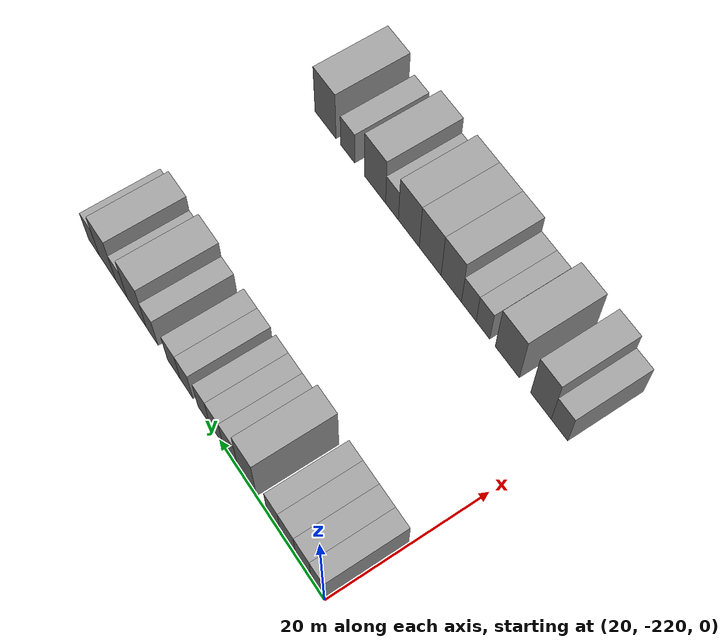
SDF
<sdf version="1.6">
 <world name="default">
  <model name="building_1">
   <static>1</static>
   <pose>25.0000 -218.7349 0 0.000000 0.000000 0.000000</pose>
   <link name="link">
    <pose>0 0 3.00 0 0 0</pose>
    <collision name="collision"><geometry><box><size>10.0000 2.5302 6.0000</size></box></geometry></collision>
    <visual name="visual">
     <cast_shadows>0</cast_shadows>
     <geometry><box><size>10.0000 2.5302 6.0000</size></box></geometry>
     <material>
      <script>
       <uri>model://grey_wall/materials/scripts</uri>
       <uri>model://grey_wall/materials/textures</uri>
       <name>vrc/grey_wall</name>
      </script>
     </material>
    </visual>
   </link>
  </model>
  <model name="building_2">
   <static>1</static>
   <pose>25.0000 -216.0574 0 0.000000 0.000000 0.000000</pose>
   <link name="link">
    <pose>0 0 3.00 0 0 0</pose>
    <collision name="collision"><geometry><box><size>10.0000 2.8248 6.0000</size></box></geometry></collision>
    <visual name="visual">
     <cast_shadows>0</cast_shadows>
     <geometry><box><size>10.0000 2.8248 6.0000</size></box></geometry>
     <material>
      <script>
       <uri>model://grey_wall/materials/scripts</uri>
       <uri>model://grey_wall/materials/textures</uri>
       <name>vrc/grey_wall</name>
      </script>
     </material>
    </visual>
   </link>
  </model>
  <model name="building_3">
   <static>1</static>
   <pose>25.0000 -213.1955 0 0.000000 0.000000 0.000000</pose>
   <link name="link">
    <pose>0 0 3.00 0 0 0</pose>
    <collision name="collision"><geometry><box><size>10.0000 2.8991 6.0000</size></box></geometry></collision>
    <visual name="visual">
     <cast_shadows>0</cast_shadows>
     <geometry><box><size>10.0000 2.8991 6.0000</size></box></geometry>
     <material>
      <script>
       <uri>model://grey_wall/materials/scripts</uri>
       <uri>model://grey_wall/materials/textures</uri>
       <name>vrc/grey_wall</name>
      </script>
     </material>
    </visual>
   </link>
  </model>
  <model name="building_4">
   <static>1</static>
   <pose>25.0000 -210.4919 0 0.000000 0.000000 0.000000</pose>
   <link name="link">
    <pose>0 0 3.00 0 0 0</pose>
    <collision name="collision"><geometry><box><size>10.0000 2.5081 6.0000</size></box></geometry></collision>
    <visual name="visual">
     <cast_shadows>0</cast_shadows>
     <geometry><box><size>10.0000 2.5081 6.0000</size></box></geometry>
     <material>
      <script>
       <uri>model://grey_wall/materials/scripts</uri>
       <uri>model://grey_wall/materials/textures</uri>
       <name>vrc/grey_wall</name>
      </script>
     </material>
    </visual>
   </link>
  </model>
  <model name="building_5">
   <static>1</static>
   <pose>25.0000 -205.4100 0 0.000000 0.000000 0.000000</pose>
   <link name="link">
    <pose>0 0 4.50 0 0 0</pose>
    <collision name="collision"><geometry><box><size>10.0000 3.6556 9.0000</size></box></geometry></collision>
    <visual name="visual">
     <cast_shadows>0</cast_shadows>
     <geometry><box><size>10.0000 3.6556 9.0000</size></box></geometry>
     <material>
      <script>
       <uri>model://grey_wall/materials/scripts</uri>
       <uri>model://grey_wall/materials/textures</uri>
       <name>vrc/grey_wall</name>
      </script>
     </material>
    </visual>
   </link>
  </model>
  <model name="building_6">
   <static>1</static>
   <pose>25.0000 -202.0952 0 0.000000 0.000000 0.000000</pose>
   <link name="link">
    <pose>0 0 3.00 0 0 0</pose>
    <collision name="collision"><geometry><box><size>10.0000 2.9741 6.0000</size></box></geometry></collision>
    <visual name="visual">
     <cast_shadows>0</cast_shadows>
     <geometry><box><size>10.0000 2.9741 6.0000</size></box></geometry>
     <material>
      <script>
       <uri>model://grey_wall/materials/scripts</uri>
       <uri>model://grey_wall/materials/textures</uri>
       <name>vrc/grey_wall</name>
      </script>
     </material>
    </visual>
   </link>
  </model>
  <model name="building_7">
   <static>1</static>
   <pose>25.0000 -199.2665 0 0.000000 0.000000 0.000000</pose>
   <link name="link">
    <pose>0 0 3.00 0 0 0</pose>
    <collision name="collision"><geometry><box><size>10.0000 2.6833 6.0000</size></box></geometry></collision>
    <visual name="visual">
     <cast_shadows>0</cast_shadows>
     <geometry><box><size>10.0000 2.6833 6.0000</size></box></geometry>
     <material>
      <script>
       <uri>model://grey_wall/materials/scripts</uri>
       <uri>model://grey_wall/materials/textures</uri>
       <name>vrc/grey_wall</name>
      </script>
     </material>
    </visual>
   </link>
  </model>
  <model name="building_8">
   <static>1</static>
   <pose>25.0000 -196.7200 0 0.000000 0.000000 0.000000</pose>
   <link name="link">
    <pose>0 0 3.00 0 0 0</pose>
    <collision name="collision"><geometry><box><size>10.0000 2.4096 6.0000</size></box></geometry></collision>
    <visual name="visual">
     <cast_shadows>0</cast_shadows>
     <geometry><box><size>10.0000 2.4096 6.0000</size></box></geometry>
     <material>
      <script>
       <uri>model://grey_wall/materials/scripts</uri>
       <uri>model://grey_wall/materials/textures</uri>
       <name>vrc/grey_wall</name>
      </script>
     </material>
    </visual>
   </link>
  </model>
  <model name="building_9">
   <static>1</static>
   <pose>25.0000 -193.1992 0 0.000000 0.000000 0.000000</pose>
   <link name="link">
    <pose>0 0 3.00 0 0 0</pose>
    <collision name="collision"><geometry><box><size>10.0000 2.6320 6.0000</size></box></geometry></collision>
    <visual name="visual">
     <cast_shadows>0</cast_shadows>
     <geometry><box><size>10.0000 2.6320 6.0000</size></box></geometry>
     <material>
      <script>
       <uri>model://grey_wall/materials/scripts</uri>
       <uri>model://grey_wall/materials/textures</uri>
       <name>vrc/grey_wall</name>
      </script>
     </material>
    </visual>
   </link>
  </model>
  <model name="building_10">
   <static>1</static>
   <pose>25.0000 -190.5442 0 0.000000 0.000000 0.000000</pose>
   <link name="link">
    <pose>0 0 3.00 0 0 0</pose>
    <collision name="collision"><geometry><box><size>10.0000 2.6780 6.0000</size></box></geometry></collision>
    <visual name="visual">
     <cast_shadows>0</cast_shadows>
     <geometry><box><size>10.0000 2.6780 6.0000</size></box></geometry>
     <material>
      <script>
       <uri>model://grey_wall/materials/scripts</uri>
       <uri>model://grey_wall/materials/textures</uri>
       <name>vrc/grey_wall</name>
      </script>
     </material>
    </visual>
   </link>
  </model>
  <model name="building_11">
   <static>1</static>
   <pose>25.0000 -185.9322 0 0.000000 0.000000 0.000000</pose>
   <link name="link">
    <pose>0 0 3.00 0 0 0</pose>
    <collision name="collision"><geometry><box><size>10.0000 2.5460 6.0000</size></box></geometry></collision>
    <visual name="visual">
     <cast_shadows>0</cast_shadows>
     <geometry><box><size>10.0000 2.5460 6.0000</size></box></geometry>
     <material>
      <script>
       <uri>model://grey_wall/materials/scripts</uri>
       <uri>model://grey_wall/materials/textures</uri>
       <name>vrc/grey_wall</name>
      </script>
     </material>
    </visual>
   </link>
  </model>
  <model name="building_12">
   <static>1</static>
   <pose>25.0000 -182.6066 0 0.000000 0.000000 0.000000</pose>
   <link name="link">
    <pose>0 0 4.50 0 0 0</pose>
    <collision name="collision"><geometry><box><size>10.0000 4.1051 9.0000</size></box></geometry></collision>
    <visual name="visual">
     <cast_shadows>0</cast_shadows>
     <geometry><box><size>10.0000 4.1051 9.0000</size></box></geometry>
     <material>
      <script>
       <uri>model://grey_wall/materials/scripts</uri>
       <uri>model://grey_wall/materials/textures</uri>
       <name>vrc/grey_wall</name>
      </script>
     </material>
    </visual>
   </link>
  </model>
  <model name="building_13">
   <static>1</static>
   <pose>25.0000 -179.2901 0 0.000000 0.000000 0.000000</pose>
   <link name="link">
    <pose>0 0 3.00 0 0 0</pose>
    <collision name="collision"><geometry><box><size>10.0000 2.5279 6.0000</size></box></geometry></collision>
    <visual name="visual">
     <cast_shadows>0</cast_shadows>
     <geometry><box><size>10.0000 2.5279 6.0000</size></box></geometry>
     <material>
      <script>
       <uri>model://grey_wall/materials/scripts</uri>
       <uri>model://grey_wall/materials/textures</uri>
       <name>vrc/grey_wall</name>
      </script>
     </material>
    </visual>
   </link>
  </model>
  <model name="building_14">
   <static>1</static>
   <pose>25.0000 -176.1806 0 0.000000 0.000000 0.000000</pose>
   <link name="link">
    <pose>0 0 4.50 0 0 0</pose>
    <collision name="collision"><geometry><box><size>10.0000 3.6912 9.0000</size></box></geometry></collision>
    <visual name="visual">
     <cast_shadows>0</cast_shadows>
     <geometry><box><size>10.0000 3.6912 9.0000</size></box></geometry>
     <material>
      <script>
       <uri>model://grey_wall/materials/scripts</uri>
       <uri>model://grey_wall/materials/textures</uri>
       <name>vrc/grey_wall</name>
      </script>
     </material>
    </visual>
   </link>
  </model>
  <model name="building_15">
   <static>1</static>
   <pose>25.0000 -173.0850 0 0.000000 0.000000 0.000000</pose>
   <link name="link">
    <pose>0 0 3.00 0 0 0</pose>
    <collision name="collision"><geometry><box><size>10.0000 2.4998 6.0000</size></box></geometry></collision>
    <visual name="visual">
     <cast_shadows>0</cast_shadows>
     <geometry><box><size>10.0000 2.4998 6.0000</size></box></geometry>
     <material>
      <script>
       <uri>model://grey_wall/materials/scripts</uri>
       <uri>model://grey_wall/materials/textures</uri>
       <name>vrc/grey_wall</name>
      </script>
     </material>
    </visual>
   </link>
  </model>
  <model name="building_118">
   <static>1</static>
   <pose>55.0000 -218.5752 0 0.000000 0.000000 0.000000</pose>
   <link name="link">
    <pose>0 0 3.00 0 0 0</pose>
    <collision name="collision"><geometry><box><size>10.0000 2.8496 6.0000</size></box></geometry></collision>
    <visual name="visual">
     <cast_shadows>0</cast_shadows>
     <geometry><box><size>10.0000 2.8496 6.0000</size></box></geometry>
     <material>
      <script>
       <uri>model://grey_wall/materials/scripts</uri>
       <uri>model://grey_wall/materials/textures</uri>
       <name>vrc/grey_wall</name>
      </script>
     </material>
    </visual>
   </link>
  </model>
  <model name="building_119">
   <static>1</static>
   <pose>55.0000 -215.3439 0 0.000000 0.000000 0.000000</pose>
   <link name="link">
    <pose>0 0 4.50 0 0 0</pose>
    <collision name="collision"><geometry><box><size>10.0000 3.6129 9.0000</size></box></geometry></collision>
    <visual name="visual">
     <cast_shadows>0</cast_shadows>
     <geometry><box><size>10.0000 3.6129 9.0000</size></box></geometry>
     <material>
      <script>
       <uri>model://grey_wall/materials/scripts</uri>
       <uri>model://grey_wall/materials/textures</uri>
       <name>vrc/grey_wall</name>
      </script>
     </material>
    </visual>
   </link>
  </model>
  <model name="building_120">
   <static>1</static>
   <pose>55.0000 -209.3565 0 0.000000 0.000000 0.000000</pose>
   <link name="link">
    <pose>0 0 4.50 0 0 0</pose>
    <collision name="collision"><geometry><box><size>10.0000 4.3619 9.0000</size></box></geometry></collision>
    <visual name="visual">
     <cast_shadows>0</cast_shadows>
     <geometry><box><size>10.0000 4.3619 9.0000</size></box></geometry>
     <material>
      <script>
       <uri>model://grey_wall/materials/scripts</uri>
       <uri>model://grey_wall/materials/textures</uri>
       <name>vrc/grey_wall</name>
      </script>
     </material>
    </visual>
   </link>
  </model>
  <model name="building_121">
   <static>1</static>
   <pose>55.0000 -204.9150 0 0.000000 0.000000 0.000000</pose>
   <link name="link">
    <pose>0 0 3.00 0 0 0</pose>
    <collision name="collision"><geometry><box><size>10.0000 2.5211 6.0000</size></box></geometry></collision>
    <visual name="visual">
     <cast_shadows>0</cast_shadows>
     <geometry><box><size>10.0000 2.5211 6.0000</size></box></geometry>
     <material>
      <script>
       <uri>model://grey_wall/materials/scripts</uri>
       <uri>model://grey_wall/materials/textures</uri>
       <name>vrc/grey_wall</name>
      </script>
     </material>
    </visual>
   </link>
  </model>
  <model name="building_122">
   <static>1</static>
   <pose>55.0000 -202.2843 0 0.000000 0.000000 0.000000</pose>
   <link name="link">
    <pose>0 0 3.00 0 0 0</pose>
    <collision name="collision"><geometry><box><size>10.0000 2.7402 6.0000</size></box></geometry></collision>
    <visual name="visual">
     <cast_shadows>0</cast_shadows>
     <geometry><box><size>10.0000 2.7402 6.0000</size></box></geometry>
     <material>
      <script>
       <uri>model://grey_wall/materials/scripts</uri>
       <uri>model://grey_wall/materials/textures</uri>
       <name>vrc/grey_wall</name>
      </script>
     </material>
    </visual>
   </link>
  </model>
  <model name="building_123">
   <static>1</static>
   <pose>55.0000 -198.9891 0 0.000000 0.000000 0.000000</pose>
   <link name="link">
    <pose>0 0 4.50 0 0 0</pose>
    <collision name="collision"><geometry><box><size>10.0000 3.8501 9.0000</size></box></geometry></collision>
    <visual name="visual">
     <cast_shadows>0</cast_shadows>
     <geometry><box><size>10.0000 3.8501 9.0000</size></box></geometry>
     <material>
      <script>
       <uri>model://grey_wall/materials/scripts</uri>
       <uri>model://grey_wall/materials/textures</uri>
       <name>vrc/grey_wall</name>
      </script>
     </material>
    </visual>
   </link>
  </model>
  <model name="building_124">
   <static>1</static>
   <pose>55.0000 -194.9635 0 0.000000 0.000000 0.000000</pose>
   <link name="link">
    <pose>0 0 4.50 0 0 0</pose>
    <collision name="collision"><geometry><box><size>10.0000 4.2012 9.0000</size></box></geometry></collision>
    <visual name="visual">
     <cast_shadows>0</cast_shadows>
     <geometry><box><size>10.0000 4.2012 9.0000</size></box></geometry>
     <material>
      <script>
       <uri>model://grey_wall/materials/scripts</uri>
       <uri>model://grey_wall/materials/textures</uri>
       <name>vrc/grey_wall</name>
      </script>
     </material>
    </visual>
   </link>
  </model>
  <model name="building_125">
   <static>1</static>
   <pose>55.0000 -190.8071 0 0.000000 0.000000 0.000000</pose>
   <link name="link">
    <pose>0 0 4.50 0 0 0</pose>
    <collision name="collision"><geometry><box><size>10.0000 4.1116 9.0000</size></box></geometry></collision>
    <visual name="visual">
     <cast_shadows>0</cast_shadows>
     <geometry><box><size>10.0000 4.1116 9.0000</size></box></geometry>
     <material>
      <script>
       <uri>model://grey_wall/materials/scripts</uri>
       <uri>model://grey_wall/materials/textures</uri>
       <name>vrc/grey_wall</name>
      </script>
     </material>
    </visual>
   </link>
  </model>
  <model name="building_126">
   <static>1</static>
   <pose>55.0000 -187.4782 0 0.000000 0.000000 0.000000</pose>
   <link name="link">
    <pose>0 0 3.00 0 0 0</pose>
    <collision name="collision"><geometry><box><size>10.0000 2.5463 6.0000</size></box></geometry></collision>
    <visual name="visual">
     <cast_shadows>0</cast_shadows>
     <geometry><box><size>10.0000 2.5463 6.0000</size></box></geometry>
     <material>
      <script>
       <uri>model://grey_wall/materials/scripts</uri>
       <uri>model://grey_wall/materials/textures</uri>
       <name>vrc/grey_wall</name>
      </script>
     </material>
    </visual>
   </link>
  </model>
  <model name="building_127">
   <static>1</static>
   <pose>55.0000 -184.0523 0 0.000000 0.000000 0.000000</pose>
   <link name="link">
    <pose>0 0 4.50 0 0 0</pose>
    <collision name="collision"><geometry><box><size>10.0000 4.3056 9.0000</size></box></geometry></collision>
    <visual name="visual">
     <cast_shadows>0</cast_shadows>
     <geometry><box><size>10.0000 4.3056 9.0000</size></box></geometry>
     <material>
      <script>
       <uri>model://grey_wall/materials/scripts</uri>
       <uri>model://grey_wall/materials/textures</uri>
       <name>vrc/grey_wall</name>
      </script>
     </material>
    </visual>
   </link>
  </model>
  <model name="building_128">
   <static>1</static>
   <pose>55.0000 -178.4528 0 0.000000 0.000000 0.000000</pose>
   <link name="link">
    <pose>0 0 3.00 0 0 0</pose>
    <collision name="collision"><geometry><box><size>10.0000 2.8933 6.0000</size></box></geometry></collision>
    <visual name="visual">
     <cast_shadows>0</cast_shadows>
     <geometry><box><size>10.0000 2.8933 6.0000</size></box></geometry>
     <material>
      <script>
       <uri>model://grey_wall/materials/scripts</uri>
       <uri>model://grey_wall/materials/textures</uri>
       <name>vrc/grey_wall</name>
      </script>
     </material>
    </visual>
   </link>
  </model>
  <model name="building_129">
   <static>1</static>
   <pose>55.0000 -173.7795 0 0.000000 0.000000 0.000000</pose>
   <link name="link">
    <pose>0 0 4.50 0 0 0</pose>
    <collision name="collision"><geometry><box><size>10.0000 4.4534 9.0000</size></box></geometry></collision>
    <visual name="visual">
     <cast_shadows>0</cast_shadows>
     <geometry><box><size>10.0000 4.4534 9.0000</size></box></geometry>
     <material>
      <script>
       <uri>model://grey_wall/materials/scripts</uri>
       <uri>model://grey_wall/materials/textures</uri>
       <name>vrc/grey_wall</name>
      </script>
     </material>
    </visual>
   </link>
  </model>
 </world>
</sdf>
